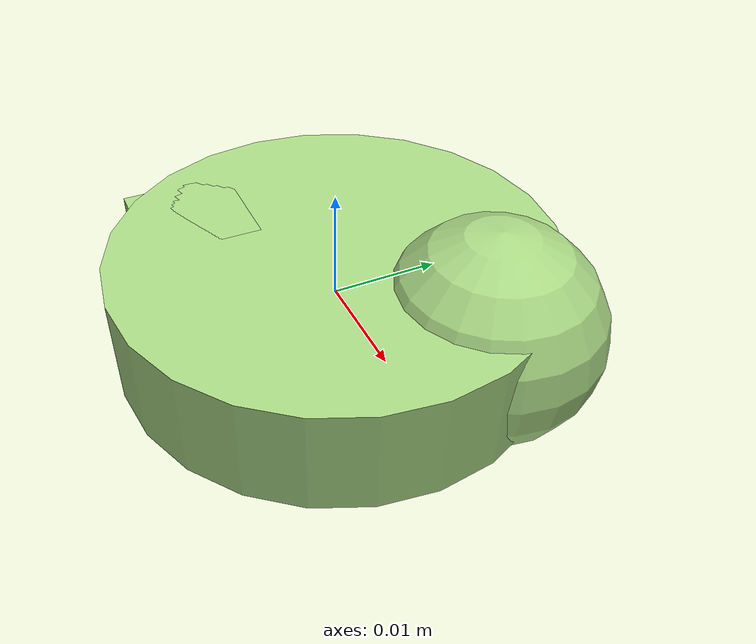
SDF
<?xml version="1.0" ?>
<!-- |    This document was autogenerated by xmacro from data/base.sdf.xacro           | -->
<!-- |    EDITING THIS FILE BY HAND IS NOT RECOMMENDED                                 | -->
<sdf version="1.8">
	<!-- Parameters -->
	<!-- Base -->
	<!-- Joint 0 -->
	<!-- Link 1 -->
	<!-- Joint 1 -->
	<!-- Link 2 -->
	<!-- Primitives -->
	<!-- Object -->
	<model name="veggie">
		<!-- link0 -->
		<link name="link0">
			<inertial>
				<mass>0.005</mass>
				<inertia>
					<ixx>5.416666666666666e-07</ixx>
					<ixy>0</ixy>
					<ixz>0</ixz>
					<ixx>5.416666666666666e-07</ixx>
					<iyz>0</iyz>
					<ixx>1.0000000000000002e-06</ixx>
				</inertia>
			</inertial>
			<visual name="link0_visual">
				<pose>0 0 0 0 0 0</pose>
				<geometry>
					<cylinder>
						<radius>0.02</radius>
						<length>0.01</length>
					</cylinder>
				</geometry>
				<material>
					<ambient>0.659 0.839 0.514 1</ambient>
					<diffuse>0.659 0.839 0.514 1</diffuse>
					<specular>0 0 0 0</specular>
					<emissive>0 0 0 1</emissive>
				</material>
			</visual>
			<collision name="link0_collision">
				<pose>0 0 0 0 0 0 </pose>
				<geometry>
					<cylinder>
						<radius>0.02</radius>
						<length>0.01</length>
					</cylinder>
				</geometry>
			</collision>
		</link>
		<!-- link1 -->
		<joint name="joint0" type="fixed">
			<pose relative_to="link0">0.01 0.01 0.0 0.0 0.0 0.0</pose>
			<parent>link0</parent>
			<child>link1</child>
		</joint>
		<link name="link1">
			<pose relative_to="joint0">0 0 0 0 0 0</pose>
			<inertial>
				<mass>0.005</mass>
				<inertia>
					<ixx>2.0000000000000004e-07</ixx>
					<ixy>0</ixy>
					<ixz>0</ixz>
					<ixx>2.0000000000000004e-07</ixx>
					<iyz>0</iyz>
					<ixx>2.0000000000000004e-07</ixx>
				</inertia>
			</inertial>
			<visual name="link1_visual">
				<pose>0 0 0 0 0 0</pose>
				<geometry>
					<ellipsoid>
						<radii>0.01 0.01 0.01</radii>
					</ellipsoid>
				</geometry>
				<material>
					<ambient>0.659 0.839 0.514 1</ambient>
					<diffuse>0.659 0.839 0.514 1</diffuse>
					<specular>0 0 0 0</specular>
					<emissive>0 0 0 1</emissive>
				</material>
			</visual>
			<collision name="link1_collision">
				<pose>0 0 0 0 0 0 </pose>
				<geometry>
					<ellipsoid>
						<radii>0.01 0.01 0.01</radii>
					</ellipsoid>
				</geometry>
			</collision>
		</link>
		<!-- link2 -->
		<joint name="joint1" type="fixed">
			<pose relative_to="link0">-0.01 -0.01 0.0 0.0 0.0 0.0</pose>
			<parent>link0</parent>
			<child>link2</child>
		</joint>
		<link name="link2">
			<pose relative_to="joint1">0 0 0 0 0 0</pose>
			<inertial>
				<mass>0.005</mass>
				<inertia>
					<ixx>8.333333333333335e-08</ixx>
					<ixy>0</ixy>
					<ixz>0</ixz>
					<iyy>8.333333333333335e-08</iyy>
					<iyz>0</iyz>
					<izz>8.333333333333335e-08</izz>
				</inertia>
			</inertial>
			<visual name="link2_visual">
				<pose>0 0 0 0 0 0 </pose>
				<geometry>
					<box>
						<size>0.01 0.01 0.01</size>
					</box>
				</geometry>
				<material>
					<ambient>0.659 0.839 0.514 1</ambient>
					<diffuse>0.659 0.839 0.514 1</diffuse>
					<specular>0 0 0 0</specular>
					<emissive>0 0 0 1</emissive>
				</material>
			</visual>
			<collision name="link2_collision">
				<pose>0 0 0 0 0 0</pose>
				<geometry>
					<box>
						<size>0.01 0.01 0.01</size>
					</box>
				</geometry>
			</collision>
		</link>
	</model>
</sdf>
